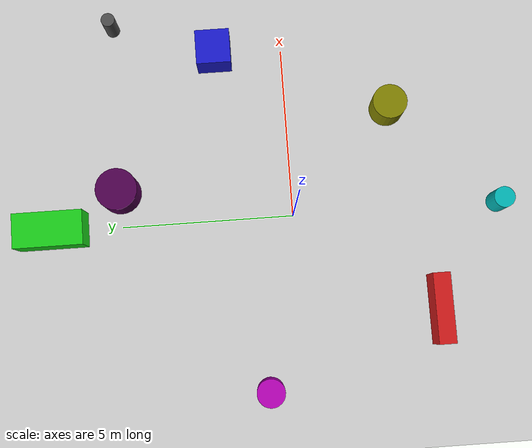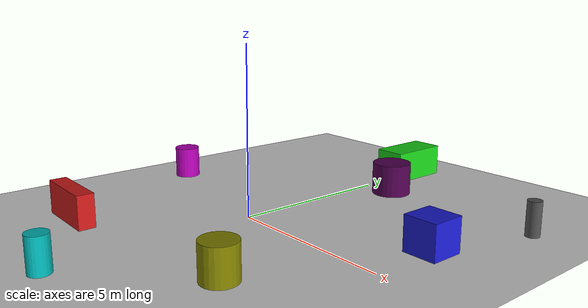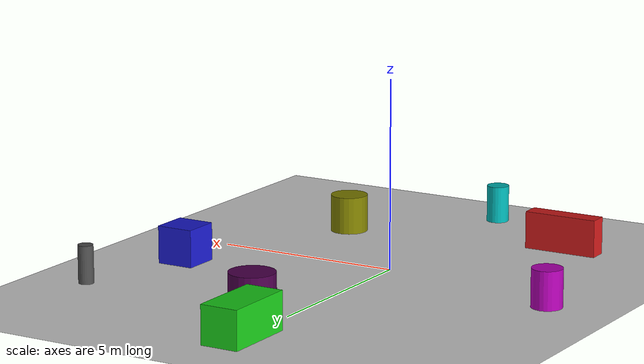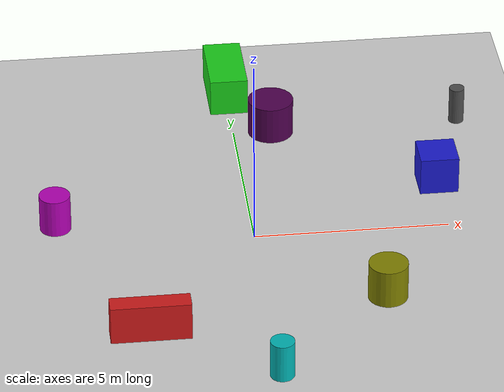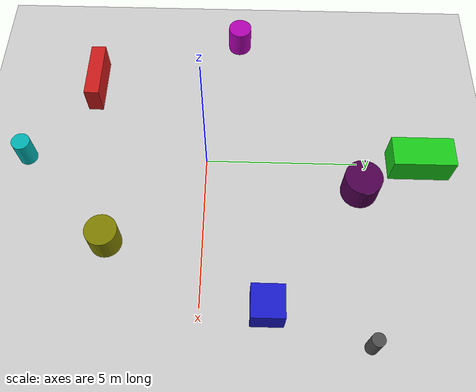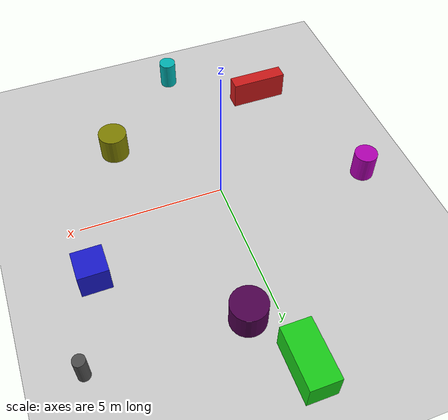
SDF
<?xml version="1.0" ?>
<sdf version="1.7">
    <world name="car_world">

        <!-- Configure the physics properties -->
        <physics name="default_physics" type="ode">
            <max_step_size>0.001</max_step_size>
            <real_time_update_rate>1000</real_time_update_rate>
            <gravity>0 0 -9.81</gravity> <!-- Standard gravity -->
        </physics>
        <plugin
            filename="libignition-gazebo-sensors-system.so"
            name="ignition::gazebo::systems::Sensors">
            <render_engine>ogre2</render_engine>
        </plugin>
        <plugin
            filename="ignition-gazebo-physics-system"
            name="ignition::gazebo::systems::Physics">
        </plugin>
        <plugin
            filename="ignition-gazebo-user-commands-system"
            name="ignition::gazebo::systems::UserCommands">
        </plugin>
        <plugin
            filename="ignition-gazebo-scene-broadcaster-system"
            name="ignition::gazebo::systems::SceneBroadcaster">
        </plugin>

        <gui fullscreen="0">
            <!-- 3D scene -->
            <plugin filename="GzScene3D" name="3D View">
                <ignition-gui>
                    <title>3D View</title>
                    <property type="bool" key="showTitleBar">false</property>
                    <property type="string" key="state">docked</property>
                </ignition-gui>
                <engine>ogre2</engine>
                <scene>scene</scene>
                <ambient_light>0.4 0.4 0.4</ambient_light>
                <background_color>0.8 0.8 0.8</background_color>
            </plugin>

            <!-- World control -->
            <plugin filename="WorldControl" name="World control">
                <ignition-gui>
                    <title>World control</title>
                    <property type="bool" key="showTitleBar">false</property>
                    <property type="bool" key="resizable">false</property>
                    <property type="double" key="height">72</property>
                    <property type="double" key="width">121</property>
                    <property type="double" key="z">1</property>
                    <property type="string" key="state">floating</property>
                    <anchors target="3D View">
                        <line own="left" target="left"/>
                        <line own="bottom" target="bottom"/>
                    </anchors>
                </ignition-gui>
                <play_pause>true</play_pause>
                <step>true</step>
                <start_paused>true</start_paused>
                <service>/world/car_world/control</service>
                <stats_topic>/world/car_world/stats</stats_topic>
            </plugin>

            <!-- World statistics -->
            <plugin filename="WorldStats" name="World stats">
                <ignition-gui>
                    <title>World stats</title>
                    <property type="bool" key="showTitleBar">false</property>
                    <property type="bool" key="resizable">false</property>
                    <property type="double" key="height">110</property>
                    <property type="double" key="width">290</property>
                    <property type="double" key="z">1</property>
                    <property type="string" key="state">floating</property>
                    <anchors target="3D View">
                        <line own="right" target="right"/>
                        <line own="bottom" target="bottom"/>
                    </anchors>
                </ignition-gui>
                <sim_time>true</sim_time>
                <real_time>true</real_time>
                <real_time_factor>true</real_time_factor>
                <iterations>true</iterations>
                <topic>/world/car_world/stats</topic>
            </plugin>

            <!-- Entity tree -->
            <plugin filename="EntityTree" name="Entity tree"></plugin>
            <!-- KeyPublisher plugin-->
            <plugin filename="KeyPublisher" name="Key Publisher"></plugin>
        </gui>

        <light type="directional" name="sun">
            <cast_shadows>true</cast_shadows>
            <pose>0 0 10 0 0 0</pose>
            <diffuse>0.8 0.8 0.8 1</diffuse>
            <specular>0.2 0.2 0.2 1</specular>
            <attenuation>
                <range>1000</range>
                <constant>0.9</constant>
                <linear>0.01</linear>
                <quadratic>0.001</quadratic>
            </attenuation>
            <direction>-0.5 0.1 -0.9</direction>
        </light>

        <model name="ground_plane">
            <static>true</static>
            <link name="link">
                <collision name="collision">
                    <geometry>
                        <plane>
                            <normal>0 0 1</normal>
                            <size>100 100</size>
                        </plane>
                    </geometry>
                </collision>
                <visual name="visual">
                    <geometry>
                        <plane>
                            <normal>0 0 1</normal>
                            <size>100 100</size>
                        </plane>
                    </geometry>
                    <material>
                        <ambient>0.8 0.8 0.8 1</ambient>
                        <diffuse>0.8 0.8 0.8 1</diffuse>
                        <specular>0.8 0.8 0.8 1</specular>
                    </material>
                </visual>
            </link>
        </model>
        <!-- Cajas como obstáculos -->
        <model name="box_1">
            <pose>5 2 0.5 0 0 0</pose>
            <static>true</static>
            <link name="link">
                <collision name="collision">
                    <geometry>
                        <box>
                            <size>1 1 1</size>
                        </box>
                    </geometry>
                </collision>
                <visual name="visual">
                    <geometry>
                        <box>
                            <size>1 1 1</size>
                        </box>
                    </geometry>
                    <material>
                        <ambient>0.1 0.1 0.8 1</ambient>
                        <diffuse>0.1 0.1 0.8 1</diffuse>
                    </material>
                </visual>
            </link>
        </model>

        <model name="box_2">
            <pose>-3 -4 0.5 0 0 0</pose>
            <static>true</static>
            <link name="link">
                <collision name="collision">
                    <geometry>
                        <box>
                            <size>2 0.5 1</size>
                        </box>
                    </geometry>
                </collision>
                <visual name="visual">
                    <geometry>
                        <box>
                            <size>2 0.5 1</size>
                        </box>
                    </geometry>
                    <material>
                        <ambient>0.8 0.1 0.1 1</ambient>
                        <diffuse>0.8 0.1 0.1 1</diffuse>
                    </material>
                </visual>
            </link>
        </model>

        <model name="box_3">
            <pose>0 7 0.5 0 0 0</pose>
            <static>true</static>
            <link name="link">
                <collision name="collision">
                    <geometry>
                        <box>
                            <size>1 2 1</size>
                        </box>
                    </geometry>
                </collision>
                <visual name="visual">
                    <geometry>
                        <box>
                            <size>1 2 1</size>
                        </box>
                    </geometry>
                    <material>
                        <ambient>0.1 0.8 0.1 1</ambient>
                        <diffuse>0.1 0.8 0.1 1</diffuse>
                    </material>
                </visual>
            </link>
        </model>

        <!-- Cilindros como obstáculos -->
        <model name="cylinder_1">
            <pose>3 -3 0.5 0 0 0</pose>
            <static>true</static>
            <link name="link">
                <collision name="collision">
                    <geometry>
                        <cylinder>
                            <radius>0.5</radius>
                            <length>1</length>
                        </cylinder>
                    </geometry>
                </collision>
                <visual name="visual">
                    <geometry>
                        <cylinder>
                            <radius>0.5</radius>
                            <length>1</length>
                        </cylinder>
                    </geometry>
                    <material>
                        <ambient>0.5 0.5 0 1</ambient>
                        <diffuse>0.5 0.5 0 1</diffuse>
                    </material>
                </visual>
            </link>
        </model>

        <model name="cylinder_2">
            <pose>-5 1 0.5 0 0 0</pose>
            <static>true</static>
            <link name="link">
                <collision name="collision">
                    <geometry>
                        <cylinder>
                            <radius>0.4</radius>
                            <length>1</length>
                        </cylinder>
                    </geometry>
                </collision>
                <visual name="visual">
                    <geometry>
                        <cylinder>
                            <radius>0.4</radius>
                            <length>1</length>
                        </cylinder>
                    </geometry>
                    <material>
                        <ambient>0.7 0 0.7 1</ambient>
                        <diffuse>0.7 0 0.7 1</diffuse>
                    </material>
                </visual>
            </link>
        </model>
        <model name="cylinder_3">
            <pose>0 -6 0.5 0 0 0</pose>
            <static>true</static>
            <link name="link">
                <collision name="collision">
                    <geometry>
                        <cylinder>
                            <radius>0.3</radius>
                            <length>1</length>
                        </cylinder>
                    </geometry>
                </collision>
                <visual name="visual">
                    <geometry>
                        <cylinder>
                            <radius>0.3</radius>
                            <length>1</length>
                        </cylinder>
                    </geometry>
                    <material>
                        <ambient>0 0.7 0.7 1</ambient>
                        <diffuse>0 0.7 0.7 1</diffuse>
                    </material>
                </visual>
            </link>
        </model>

        <model name="cylinder_4">
            <pose>6 5 0.5 0 0 0</pose>
            <static>true</static>
            <link name="link">
                <collision name="collision">
                    <geometry>
                        <cylinder>
                            <radius>0.2</radius>
                            <length>1</length>
                        </cylinder>
                    </geometry>
                </collision>
                <visual name="visual">
                    <geometry>
                        <cylinder>
                            <radius>0.2</radius>
                            <length>1</length>
                        </cylinder>
                    </geometry>
                    <material>
                        <ambient>0.3 0.3 0.3 1</ambient>
                        <diffuse>0.3 0.3 0.3 1</diffuse>
                    </material>
                </visual>
            </link>
        </model>

        <model name="cylinder_5">
            <pose>1 5 0.5 0 0 0</pose>
            <static>true</static>
            <link name="link">
                <collision name="collision">
                    <geometry>
                        <cylinder>
                            <radius>0.6</radius>
                            <length>1</length>
                        </cylinder>
                    </geometry>
                </collision>
                <visual name="visual">
                    <geometry>
                        <cylinder>
                            <radius>0.6</radius>
                            <length>1</length>
                        </cylinder>
                    </geometry>
                    <material>
                        <ambient>0.3 0 0.3 1</ambient>
                        <diffuse>0.3 0 0.3 1</diffuse>
                    </material>
                </visual>
            </link>
        </model>
    </world>
</sdf>
